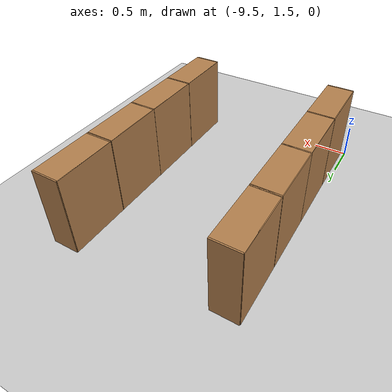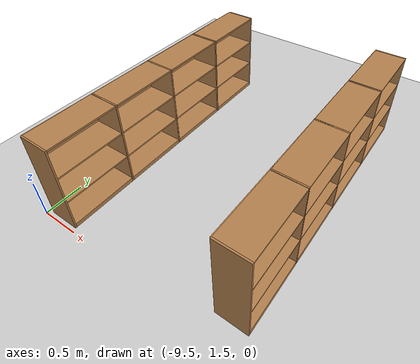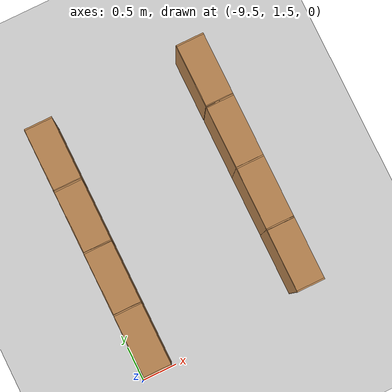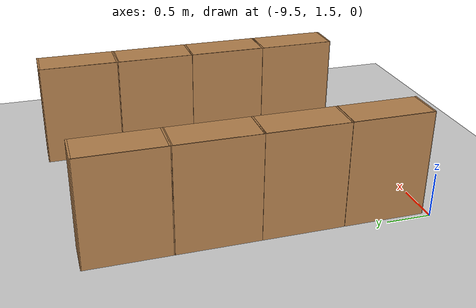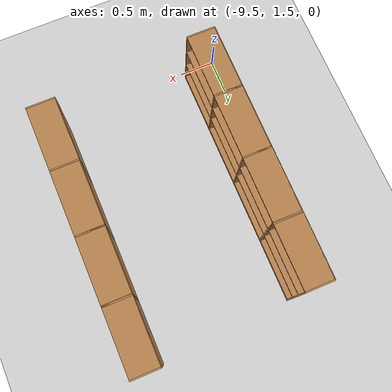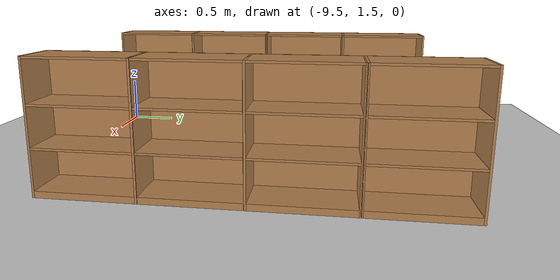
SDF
<sdf version="1.6">
 <world name="default">
  <model name="ground_plane">
   <static>1</static>
   <link name="link">
    <collision name="collision">
     <geometry><plane><normal>0 0 1</normal><size>100 100</size></plane></geometry>
     <surface><friction><ode><mu>100</mu><mu2>50</mu2></ode></friction></surface>
    </collision>
    <visual name="visual">
     <cast_shadows>0</cast_shadows>
     <geometry><plane><normal>0 0 1</normal><size>100 100</size></plane></geometry>
     <material>
      <script><uri>file://media/materials/scripts/gazebo.material</uri><name>Gazebo/Grey</name></script>
     </material>
    </visual>
   </link>
  </model>
  <model name="Bookself-4_clone_14_clone_2">
   <model name="Bookself-3">
    <model name="bookshelf_0">
     <static>1</static>
     <link name="link">
      <inertial><mass>1</mass></inertial>
      <collision name="back">
       <pose>0 0.005 0.6 0 -0 0</pose>
       <geometry><box><size>0.9 0.01 1.2</size></box></geometry>
      </collision>
      <visual name="visual1">
       <pose>0 0.005 0.6 0 -0 0</pose>
       <geometry><box><size>0.9 0.01 1.2</size></box></geometry>
       <material>
        <script><uri>file://media/materials/scripts/gazebo.material</uri><name>Gazebo/Wood</name></script>
       </material>
      </visual>
      <collision name="left_side">
       <pose>0.45 -0.195 0.6 0 -0 0</pose>
       <geometry><box><size>0.02 0.4 1.2</size></box></geometry>
      </collision>
      <visual name="visual2">
       <pose>0.45 -0.195 0.6 0 -0 0</pose>
       <geometry><box><size>0.02 0.4 1.2</size></box></geometry>
       <material>
        <script><uri>file://media/materials/scripts/gazebo.material</uri><name>Gazebo/Wood</name></script>
       </material>
      </visual>
      <collision name="right_side">
       <pose>-0.45 -0.195 0.6 0 -0 0</pose>
       <geometry><box><size>0.02 0.4 1.2</size></box></geometry>
      </collision>
      <visual name="visual3">
       <pose>-0.45 -0.195 0.6 0 -0 0</pose>
       <geometry><box><size>0.02 0.4 1.2</size></box></geometry>
       <material>
        <script><uri>file://media/materials/scripts/gazebo.material</uri><name>Gazebo/Wood</name></script>
       </material>
      </visual>
      <collision name="bottom">
       <pose>0 -0.195 0.03 0 -0 0</pose>
       <geometry><box><size>0.88 0.4 0.06</size></box></geometry>
      </collision>
      <visual name="visual4">
       <pose>0 -0.195 0.03 0 -0 0</pose>
       <geometry><box><size>0.88 0.4 0.06</size></box></geometry>
       <material>
        <script><uri>file://media/materials/scripts/gazebo.material</uri><name>Gazebo/Wood</name></script>
       </material>
      </visual>
      <collision name="top">
       <pose>0 -0.195 1.19 0 -0 0</pose>
       <geometry><box><size>0.88 0.4 0.02</size></box></geometry>
      </collision>
      <visual name="visual5">
       <pose>0 -0.195 1.19 0 -0 0</pose>
       <geometry><box><size>0.88 0.4 0.02</size></box></geometry>
       <material>
        <script><uri>file://media/materials/scripts/gazebo.material</uri><name>Gazebo/Wood</name></script>
       </material>
      </visual>
      <collision name="low_shelf">
       <pose>0 -0.195 0.43 0 -0 0</pose>
       <geometry><box><size>0.88 0.4 0.02</size></box></geometry>
      </collision>
      <visual name="visual6">
       <pose>0 -0.195 0.43 0 -0 0</pose>
       <geometry><box><size>0.88 0.4 0.02</size></box></geometry>
       <material>
        <script><uri>file://media/materials/scripts/gazebo.material</uri><name>Gazebo/Wood</name></script>
       </material>
      </visual>
      <collision name="high_shelf">
       <pose>0 -0.195 0.8 0 -0 0</pose>
       <geometry><box><size>0.88 0.4 0.02</size></box></geometry>
      </collision>
      <visual name="visual7">
       <pose>0 -0.195 0.8 0 -0 0</pose>
       <geometry><box><size>0.88 0.4 0.02</size></box></geometry>
       <material>
        <script><uri>file://media/materials/scripts/gazebo.material</uri><name>Gazebo/Wood</name></script>
       </material>
      </visual>
     </link>
     <pose>-0.903039 0 0 0 -0 0</pose>
    </model>
    <model name="bookshelf_1">
     <static>1</static>
     <link name="link">
      <inertial><mass>1</mass></inertial>
      <collision name="back">
       <pose>0 0.005 0.6 0 -0 0</pose>
       <geometry><box><size>0.9 0.01 1.2</size></box></geometry>
      </collision>
      <visual name="visual1">
       <pose>0 0.005 0.6 0 -0 0</pose>
       <geometry><box><size>0.9 0.01 1.2</size></box></geometry>
       <material>
        <script><uri>file://media/materials/scripts/gazebo.material</uri><name>Gazebo/Wood</name></script>
       </material>
      </visual>
      <collision name="left_side">
       <pose>0.45 -0.195 0.6 0 -0 0</pose>
       <geometry><box><size>0.02 0.4 1.2</size></box></geometry>
      </collision>
      <visual name="visual2">
       <pose>0.45 -0.195 0.6 0 -0 0</pose>
       <geometry><box><size>0.02 0.4 1.2</size></box></geometry>
       <material>
        <script><uri>file://media/materials/scripts/gazebo.material</uri><name>Gazebo/Wood</name></script>
       </material>
      </visual>
      <collision name="right_side">
       <pose>-0.45 -0.195 0.6 0 -0 0</pose>
       <geometry><box><size>0.02 0.4 1.2</size></box></geometry>
      </collision>
      <visual name="visual3">
       <pose>-0.45 -0.195 0.6 0 -0 0</pose>
       <geometry><box><size>0.02 0.4 1.2</size></box></geometry>
       <material>
        <script><uri>file://media/materials/scripts/gazebo.material</uri><name>Gazebo/Wood</name></script>
       </material>
      </visual>
      <collision name="bottom">
       <pose>0 -0.195 0.03 0 -0 0</pose>
       <geometry><box><size>0.88 0.4 0.06</size></box></geometry>
      </collision>
      <visual name="visual4">
       <pose>0 -0.195 0.03 0 -0 0</pose>
       <geometry><box><size>0.88 0.4 0.06</size></box></geometry>
       <material>
        <script><uri>file://media/materials/scripts/gazebo.material</uri><name>Gazebo/Wood</name></script>
       </material>
      </visual>
      <collision name="top">
       <pose>0 -0.195 1.19 0 -0 0</pose>
       <geometry><box><size>0.88 0.4 0.02</size></box></geometry>
      </collision>
      <visual name="visual5">
       <pose>0 -0.195 1.19 0 -0 0</pose>
       <geometry><box><size>0.88 0.4 0.02</size></box></geometry>
       <material>
        <script><uri>file://media/materials/scripts/gazebo.material</uri><name>Gazebo/Wood</name></script>
       </material>
      </visual>
      <collision name="low_shelf">
       <pose>0 -0.195 0.43 0 -0 0</pose>
       <geometry><box><size>0.88 0.4 0.02</size></box></geometry>
      </collision>
      <visual name="visual6">
       <pose>0 -0.195 0.43 0 -0 0</pose>
       <geometry><box><size>0.88 0.4 0.02</size></box></geometry>
       <material>
        <script><uri>file://media/materials/scripts/gazebo.material</uri><name>Gazebo/Wood</name></script>
       </material>
      </visual>
      <collision name="high_shelf">
       <pose>0 -0.195 0.8 0 -0 0</pose>
       <geometry><box><size>0.88 0.4 0.02</size></box></geometry>
      </collision>
      <visual name="visual7">
       <pose>0 -0.195 0.8 0 -0 0</pose>
       <geometry><box><size>0.88 0.4 0.02</size></box></geometry>
       <material>
        <script><uri>file://media/materials/scripts/gazebo.material</uri><name>Gazebo/Wood</name></script>
       </material>
      </visual>
     </link>
     <pose>0.000535 0 0 0 -0 0</pose>
    </model>
    <model name="bookshelf_1_clone">
     <static>1</static>
     <link name="link">
      <inertial><mass>1</mass></inertial>
      <collision name="back">
       <pose>0 0.005 0.6 0 -0 0</pose>
       <geometry><box><size>0.9 0.01 1.2</size></box></geometry>
      </collision>
      <visual name="visual1">
       <pose>0 0.005 0.6 0 -0 0</pose>
       <geometry><box><size>0.9 0.01 1.2</size></box></geometry>
       <material>
        <script><uri>file://media/materials/scripts/gazebo.material</uri><name>Gazebo/Wood</name></script>
       </material>
      </visual>
      <collision name="left_side">
       <pose>0.45 -0.195 0.6 0 -0 0</pose>
       <geometry><box><size>0.02 0.4 1.2</size></box></geometry>
      </collision>
      <visual name="visual2">
       <pose>0.45 -0.195 0.6 0 -0 0</pose>
       <geometry><box><size>0.02 0.4 1.2</size></box></geometry>
       <material>
        <script><uri>file://media/materials/scripts/gazebo.material</uri><name>Gazebo/Wood</name></script>
       </material>
      </visual>
      <collision name="right_side">
       <pose>-0.45 -0.195 0.6 0 -0 0</pose>
       <geometry><box><size>0.02 0.4 1.2</size></box></geometry>
      </collision>
      <visual name="visual3">
       <pose>-0.45 -0.195 0.6 0 -0 0</pose>
       <geometry><box><size>0.02 0.4 1.2</size></box></geometry>
       <material>
        <script><uri>file://media/materials/scripts/gazebo.material</uri><name>Gazebo/Wood</name></script>
       </material>
      </visual>
      <collision name="bottom">
       <pose>0 -0.195 0.03 0 -0 0</pose>
       <geometry><box><size>0.88 0.4 0.06</size></box></geometry>
      </collision>
      <visual name="visual4">
       <pose>0 -0.195 0.03 0 -0 0</pose>
       <geometry><box><size>0.88 0.4 0.06</size></box></geometry>
       <material>
        <script><uri>file://media/materials/scripts/gazebo.material</uri><name>Gazebo/Wood</name></script>
       </material>
      </visual>
      <collision name="top">
       <pose>0 -0.195 1.19 0 -0 0</pose>
       <geometry><box><size>0.88 0.4 0.02</size></box></geometry>
      </collision>
      <visual name="visual5">
       <pose>0 -0.195 1.19 0 -0 0</pose>
       <geometry><box><size>0.88 0.4 0.02</size></box></geometry>
       <material>
        <script><uri>file://media/materials/scripts/gazebo.material</uri><name>Gazebo/Wood</name></script>
       </material>
      </visual>
      <collision name="low_shelf">
       <pose>0 -0.195 0.43 0 -0 0</pose>
       <geometry><box><size>0.88 0.4 0.02</size></box></geometry>
      </collision>
      <visual name="visual6">
       <pose>0 -0.195 0.43 0 -0 0</pose>
       <geometry><box><size>0.88 0.4 0.02</size></box></geometry>
       <material>
        <script><uri>file://media/materials/scripts/gazebo.material</uri><name>Gazebo/Wood</name></script>
       </material>
      </visual>
      <collision name="high_shelf">
       <pose>0 -0.195 0.8 0 -0 0</pose>
       <geometry><box><size>0.88 0.4 0.02</size></box></geometry>
      </collision>
      <visual name="visual7">
       <pose>0 -0.195 0.8 0 -0 0</pose>
       <geometry><box><size>0.88 0.4 0.02</size></box></geometry>
       <material>
        <script><uri>file://media/materials/scripts/gazebo.material</uri><name>Gazebo/Wood</name></script>
       </material>
      </visual>
     </link>
     <pose>0.902502 0 0 0 -0 0</pose>
    </model>
    <static>1</static>
    <pose>-0.906894 3e-05 0 0 -0 0</pose>
   </model>
   <model name="bookshelf">
    <static>1</static>
    <link name="link">
     <inertial><mass>1</mass></inertial>
     <collision name="back">
      <pose>0 0.005 0.6 0 -0 0</pose>
      <geometry><box><size>0.9 0.01 1.2</size></box></geometry>
     </collision>
     <visual name="visual1">
      <pose>0 0.005 0.6 0 -0 0</pose>
      <geometry><box><size>0.9 0.01 1.2</size></box></geometry>
      <material>
       <script><uri>file://media/materials/scripts/gazebo.material</uri><name>Gazebo/Wood</name></script>
      </material>
     </visual>
     <collision name="left_side">
      <pose>0.45 -0.195 0.6 0 -0 0</pose>
      <geometry><box><size>0.02 0.4 1.2</size></box></geometry>
     </collision>
     <visual name="visual2">
      <pose>0.45 -0.195 0.6 0 -0 0</pose>
      <geometry><box><size>0.02 0.4 1.2</size></box></geometry>
      <material>
       <script><uri>file://media/materials/scripts/gazebo.material</uri><name>Gazebo/Wood</name></script>
      </material>
     </visual>
     <collision name="right_side">
      <pose>-0.45 -0.195 0.6 0 -0 0</pose>
      <geometry><box><size>0.02 0.4 1.2</size></box></geometry>
     </collision>
     <visual name="visual3">
      <pose>-0.45 -0.195 0.6 0 -0 0</pose>
      <geometry><box><size>0.02 0.4 1.2</size></box></geometry>
      <material>
       <script><uri>file://media/materials/scripts/gazebo.material</uri><name>Gazebo/Wood</name></script>
      </material>
     </visual>
     <collision name="bottom">
      <pose>0 -0.195 0.03 0 -0 0</pose>
      <geometry><box><size>0.88 0.4 0.06</size></box></geometry>
     </collision>
     <visual name="visual4">
      <pose>0 -0.195 0.03 0 -0 0</pose>
      <geometry><box><size>0.88 0.4 0.06</size></box></geometry>
      <material>
       <script><uri>file://media/materials/scripts/gazebo.material</uri><name>Gazebo/Wood</name></script>
      </material>
     </visual>
     <collision name="top">
      <pose>0 -0.195 1.19 0 -0 0</pose>
      <geometry><box><size>0.88 0.4 0.02</size></box></geometry>
     </collision>
     <visual name="visual5">
      <pose>0 -0.195 1.19 0 -0 0</pose>
      <geometry><box><size>0.88 0.4 0.02</size></box></geometry>
      <material>
       <script><uri>file://media/materials/scripts/gazebo.material</uri><name>Gazebo/Wood</name></script>
      </material>
     </visual>
     <collision name="low_shelf">
      <pose>0 -0.195 0.43 0 -0 0</pose>
      <geometry><box><size>0.88 0.4 0.02</size></box></geometry>
     </collision>
     <visual name="visual6">
      <pose>0 -0.195 0.43 0 -0 0</pose>
      <geometry><box><size>0.88 0.4 0.02</size></box></geometry>
      <material>
       <script><uri>file://media/materials/scripts/gazebo.material</uri><name>Gazebo/Wood</name></script>
      </material>
     </visual>
     <collision name="high_shelf">
      <pose>0 -0.195 0.8 0 -0 0</pose>
      <geometry><box><size>0.88 0.4 0.02</size></box></geometry>
     </collision>
     <visual name="visual7">
      <pose>0 -0.195 0.8 0 -0 0</pose>
      <geometry><box><size>0.88 0.4 0.02</size></box></geometry>
      <material>
       <script><uri>file://media/materials/scripts/gazebo.material</uri><name>Gazebo/Wood</name></script>
      </material>
     </visual>
    </link>
    <pose>0.906808 3e-05 0 0 -0 0</pose>
   </model>
   <static>0</static>
   <pose>-7.13601 3.95822 0 0 -0 1.5707</pose>
  </model>
  <model name="Bookself-4_clone_14_clone_3">
   <model name="Bookself-3">
    <model name="bookshelf_0">
     <static>1</static>
     <link name="link">
      <inertial><mass>1</mass></inertial>
      <collision name="back">
       <pose>0 0.005 0.6 0 -0 0</pose>
       <geometry><box><size>0.9 0.01 1.2</size></box></geometry>
      </collision>
      <visual name="visual1">
       <pose>0 0.005 0.6 0 -0 0</pose>
       <geometry><box><size>0.9 0.01 1.2</size></box></geometry>
       <material>
        <script><uri>file://media/materials/scripts/gazebo.material</uri><name>Gazebo/Wood</name></script>
       </material>
      </visual>
      <collision name="left_side">
       <pose>0.45 -0.195 0.6 0 -0 0</pose>
       <geometry><box><size>0.02 0.4 1.2</size></box></geometry>
      </collision>
      <visual name="visual2">
       <pose>0.45 -0.195 0.6 0 -0 0</pose>
       <geometry><box><size>0.02 0.4 1.2</size></box></geometry>
       <material>
        <script><uri>file://media/materials/scripts/gazebo.material</uri><name>Gazebo/Wood</name></script>
       </material>
      </visual>
      <collision name="right_side">
       <pose>-0.45 -0.195 0.6 0 -0 0</pose>
       <geometry><box><size>0.02 0.4 1.2</size></box></geometry>
      </collision>
      <visual name="visual3">
       <pose>-0.45 -0.195 0.6 0 -0 0</pose>
       <geometry><box><size>0.02 0.4 1.2</size></box></geometry>
       <material>
        <script><uri>file://media/materials/scripts/gazebo.material</uri><name>Gazebo/Wood</name></script>
       </material>
      </visual>
      <collision name="bottom">
       <pose>0 -0.195 0.03 0 -0 0</pose>
       <geometry><box><size>0.88 0.4 0.06</size></box></geometry>
      </collision>
      <visual name="visual4">
       <pose>0 -0.195 0.03 0 -0 0</pose>
       <geometry><box><size>0.88 0.4 0.06</size></box></geometry>
       <material>
        <script><uri>file://media/materials/scripts/gazebo.material</uri><name>Gazebo/Wood</name></script>
       </material>
      </visual>
      <collision name="top">
       <pose>0 -0.195 1.19 0 -0 0</pose>
       <geometry><box><size>0.88 0.4 0.02</size></box></geometry>
      </collision>
      <visual name="visual5">
       <pose>0 -0.195 1.19 0 -0 0</pose>
       <geometry><box><size>0.88 0.4 0.02</size></box></geometry>
       <material>
        <script><uri>file://media/materials/scripts/gazebo.material</uri><name>Gazebo/Wood</name></script>
       </material>
      </visual>
      <collision name="low_shelf">
       <pose>0 -0.195 0.43 0 -0 0</pose>
       <geometry><box><size>0.88 0.4 0.02</size></box></geometry>
      </collision>
      <visual name="visual6">
       <pose>0 -0.195 0.43 0 -0 0</pose>
       <geometry><box><size>0.88 0.4 0.02</size></box></geometry>
       <material>
        <script><uri>file://media/materials/scripts/gazebo.material</uri><name>Gazebo/Wood</name></script>
       </material>
      </visual>
      <collision name="high_shelf">
       <pose>0 -0.195 0.8 0 -0 0</pose>
       <geometry><box><size>0.88 0.4 0.02</size></box></geometry>
      </collision>
      <visual name="visual7">
       <pose>0 -0.195 0.8 0 -0 0</pose>
       <geometry><box><size>0.88 0.4 0.02</size></box></geometry>
       <material>
        <script><uri>file://media/materials/scripts/gazebo.material</uri><name>Gazebo/Wood</name></script>
       </material>
      </visual>
     </link>
     <pose>-0.903039 0 0 0 -0 0</pose>
    </model>
    <model name="bookshelf_1">
     <static>1</static>
     <link name="link">
      <inertial><mass>1</mass></inertial>
      <collision name="back">
       <pose>0 0.005 0.6 0 -0 0</pose>
       <geometry><box><size>0.9 0.01 1.2</size></box></geometry>
      </collision>
      <visual name="visual1">
       <pose>0 0.005 0.6 0 -0 0</pose>
       <geometry><box><size>0.9 0.01 1.2</size></box></geometry>
       <material>
        <script><uri>file://media/materials/scripts/gazebo.material</uri><name>Gazebo/Wood</name></script>
       </material>
      </visual>
      <collision name="left_side">
       <pose>0.45 -0.195 0.6 0 -0 0</pose>
       <geometry><box><size>0.02 0.4 1.2</size></box></geometry>
      </collision>
      <visual name="visual2">
       <pose>0.45 -0.195 0.6 0 -0 0</pose>
       <geometry><box><size>0.02 0.4 1.2</size></box></geometry>
       <material>
        <script><uri>file://media/materials/scripts/gazebo.material</uri><name>Gazebo/Wood</name></script>
       </material>
      </visual>
      <collision name="right_side">
       <pose>-0.45 -0.195 0.6 0 -0 0</pose>
       <geometry><box><size>0.02 0.4 1.2</size></box></geometry>
      </collision>
      <visual name="visual3">
       <pose>-0.45 -0.195 0.6 0 -0 0</pose>
       <geometry><box><size>0.02 0.4 1.2</size></box></geometry>
       <material>
        <script><uri>file://media/materials/scripts/gazebo.material</uri><name>Gazebo/Wood</name></script>
       </material>
      </visual>
      <collision name="bottom">
       <pose>0 -0.195 0.03 0 -0 0</pose>
       <geometry><box><size>0.88 0.4 0.06</size></box></geometry>
      </collision>
      <visual name="visual4">
       <pose>0 -0.195 0.03 0 -0 0</pose>
       <geometry><box><size>0.88 0.4 0.06</size></box></geometry>
       <material>
        <script><uri>file://media/materials/scripts/gazebo.material</uri><name>Gazebo/Wood</name></script>
       </material>
      </visual>
      <collision name="top">
       <pose>0 -0.195 1.19 0 -0 0</pose>
       <geometry><box><size>0.88 0.4 0.02</size></box></geometry>
      </collision>
      <visual name="visual5">
       <pose>0 -0.195 1.19 0 -0 0</pose>
       <geometry><box><size>0.88 0.4 0.02</size></box></geometry>
       <material>
        <script><uri>file://media/materials/scripts/gazebo.material</uri><name>Gazebo/Wood</name></script>
       </material>
      </visual>
      <collision name="low_shelf">
       <pose>0 -0.195 0.43 0 -0 0</pose>
       <geometry><box><size>0.88 0.4 0.02</size></box></geometry>
      </collision>
      <visual name="visual6">
       <pose>0 -0.195 0.43 0 -0 0</pose>
       <geometry><box><size>0.88 0.4 0.02</size></box></geometry>
       <material>
        <script><uri>file://media/materials/scripts/gazebo.material</uri><name>Gazebo/Wood</name></script>
       </material>
      </visual>
      <collision name="high_shelf">
       <pose>0 -0.195 0.8 0 -0 0</pose>
       <geometry><box><size>0.88 0.4 0.02</size></box></geometry>
      </collision>
      <visual name="visual7">
       <pose>0 -0.195 0.8 0 -0 0</pose>
       <geometry><box><size>0.88 0.4 0.02</size></box></geometry>
       <material>
        <script><uri>file://media/materials/scripts/gazebo.material</uri><name>Gazebo/Wood</name></script>
       </material>
      </visual>
     </link>
     <pose>0.000535 0 0 0 -0 0</pose>
    </model>
    <model name="bookshelf_1_clone">
     <static>1</static>
     <link name="link">
      <inertial><mass>1</mass></inertial>
      <collision name="back">
       <pose>0 0.005 0.6 0 -0 0</pose>
       <geometry><box><size>0.9 0.01 1.2</size></box></geometry>
      </collision>
      <visual name="visual1">
       <pose>0 0.005 0.6 0 -0 0</pose>
       <geometry><box><size>0.9 0.01 1.2</size></box></geometry>
       <material>
        <script><uri>file://media/materials/scripts/gazebo.material</uri><name>Gazebo/Wood</name></script>
       </material>
      </visual>
      <collision name="left_side">
       <pose>0.45 -0.195 0.6 0 -0 0</pose>
       <geometry><box><size>0.02 0.4 1.2</size></box></geometry>
      </collision>
      <visual name="visual2">
       <pose>0.45 -0.195 0.6 0 -0 0</pose>
       <geometry><box><size>0.02 0.4 1.2</size></box></geometry>
       <material>
        <script><uri>file://media/materials/scripts/gazebo.material</uri><name>Gazebo/Wood</name></script>
       </material>
      </visual>
      <collision name="right_side">
       <pose>-0.45 -0.195 0.6 0 -0 0</pose>
       <geometry><box><size>0.02 0.4 1.2</size></box></geometry>
      </collision>
      <visual name="visual3">
       <pose>-0.45 -0.195 0.6 0 -0 0</pose>
       <geometry><box><size>0.02 0.4 1.2</size></box></geometry>
       <material>
        <script><uri>file://media/materials/scripts/gazebo.material</uri><name>Gazebo/Wood</name></script>
       </material>
      </visual>
      <collision name="bottom">
       <pose>0 -0.195 0.03 0 -0 0</pose>
       <geometry><box><size>0.88 0.4 0.06</size></box></geometry>
      </collision>
      <visual name="visual4">
       <pose>0 -0.195 0.03 0 -0 0</pose>
       <geometry><box><size>0.88 0.4 0.06</size></box></geometry>
       <material>
        <script><uri>file://media/materials/scripts/gazebo.material</uri><name>Gazebo/Wood</name></script>
       </material>
      </visual>
      <collision name="top">
       <pose>0 -0.195 1.19 0 -0 0</pose>
       <geometry><box><size>0.88 0.4 0.02</size></box></geometry>
      </collision>
      <visual name="visual5">
       <pose>0 -0.195 1.19 0 -0 0</pose>
       <geometry><box><size>0.88 0.4 0.02</size></box></geometry>
       <material>
        <script><uri>file://media/materials/scripts/gazebo.material</uri><name>Gazebo/Wood</name></script>
       </material>
      </visual>
      <collision name="low_shelf">
       <pose>0 -0.195 0.43 0 -0 0</pose>
       <geometry><box><size>0.88 0.4 0.02</size></box></geometry>
      </collision>
      <visual name="visual6">
       <pose>0 -0.195 0.43 0 -0 0</pose>
       <geometry><box><size>0.88 0.4 0.02</size></box></geometry>
       <material>
        <script><uri>file://media/materials/scripts/gazebo.material</uri><name>Gazebo/Wood</name></script>
       </material>
      </visual>
      <collision name="high_shelf">
       <pose>0 -0.195 0.8 0 -0 0</pose>
       <geometry><box><size>0.88 0.4 0.02</size></box></geometry>
      </collision>
      <visual name="visual7">
       <pose>0 -0.195 0.8 0 -0 0</pose>
       <geometry><box><size>0.88 0.4 0.02</size></box></geometry>
       <material>
        <script><uri>file://media/materials/scripts/gazebo.material</uri><name>Gazebo/Wood</name></script>
       </material>
      </visual>
     </link>
     <pose>0.902502 0 0 0 -0 0</pose>
    </model>
    <static>1</static>
    <pose>-0.906894 3e-05 0 0 -0 0</pose>
   </model>
   <model name="bookshelf">
    <static>1</static>
    <link name="link">
     <inertial><mass>1</mass></inertial>
     <collision name="back">
      <pose>0 0.005 0.6 0 -0 0</pose>
      <geometry><box><size>0.9 0.01 1.2</size></box></geometry>
     </collision>
     <visual name="visual1">
      <pose>0 0.005 0.6 0 -0 0</pose>
      <geometry><box><size>0.9 0.01 1.2</size></box></geometry>
      <material>
       <script><uri>file://media/materials/scripts/gazebo.material</uri><name>Gazebo/Wood</name></script>
      </material>
     </visual>
     <collision name="left_side">
      <pose>0.45 -0.195 0.6 0 -0 0</pose>
      <geometry><box><size>0.02 0.4 1.2</size></box></geometry>
     </collision>
     <visual name="visual2">
      <pose>0.45 -0.195 0.6 0 -0 0</pose>
      <geometry><box><size>0.02 0.4 1.2</size></box></geometry>
      <material>
       <script><uri>file://media/materials/scripts/gazebo.material</uri><name>Gazebo/Wood</name></script>
      </material>
     </visual>
     <collision name="right_side">
      <pose>-0.45 -0.195 0.6 0 -0 0</pose>
      <geometry><box><size>0.02 0.4 1.2</size></box></geometry>
     </collision>
     <visual name="visual3">
      <pose>-0.45 -0.195 0.6 0 -0 0</pose>
      <geometry><box><size>0.02 0.4 1.2</size></box></geometry>
      <material>
       <script><uri>file://media/materials/scripts/gazebo.material</uri><name>Gazebo/Wood</name></script>
      </material>
     </visual>
     <collision name="bottom">
      <pose>0 -0.195 0.03 0 -0 0</pose>
      <geometry><box><size>0.88 0.4 0.06</size></box></geometry>
     </collision>
     <visual name="visual4">
      <pose>0 -0.195 0.03 0 -0 0</pose>
      <geometry><box><size>0.88 0.4 0.06</size></box></geometry>
      <material>
       <script><uri>file://media/materials/scripts/gazebo.material</uri><name>Gazebo/Wood</name></script>
      </material>
     </visual>
     <collision name="top">
      <pose>0 -0.195 1.19 0 -0 0</pose>
      <geometry><box><size>0.88 0.4 0.02</size></box></geometry>
     </collision>
     <visual name="visual5">
      <pose>0 -0.195 1.19 0 -0 0</pose>
      <geometry><box><size>0.88 0.4 0.02</size></box></geometry>
      <material>
       <script><uri>file://media/materials/scripts/gazebo.material</uri><name>Gazebo/Wood</name></script>
      </material>
     </visual>
     <collision name="low_shelf">
      <pose>0 -0.195 0.43 0 -0 0</pose>
      <geometry><box><size>0.88 0.4 0.02</size></box></geometry>
     </collision>
     <visual name="visual6">
      <pose>0 -0.195 0.43 0 -0 0</pose>
      <geometry><box><size>0.88 0.4 0.02</size></box></geometry>
      <material>
       <script><uri>file://media/materials/scripts/gazebo.material</uri><name>Gazebo/Wood</name></script>
      </material>
     </visual>
     <collision name="high_shelf">
      <pose>0 -0.195 0.8 0 -0 0</pose>
      <geometry><box><size>0.88 0.4 0.02</size></box></geometry>
     </collision>
     <visual name="visual7">
      <pose>0 -0.195 0.8 0 -0 0</pose>
      <geometry><box><size>0.88 0.4 0.02</size></box></geometry>
      <material>
       <script><uri>file://media/materials/scripts/gazebo.material</uri><name>Gazebo/Wood</name></script>
      </material>
     </visual>
    </link>
    <pose>0.906808 3e-05 0 0 -0 0</pose>
   </model>
   <static>0</static>
   <pose>-9.43057 3.82325 0 0 -0 1.5707</pose>
  </model>
 </world>
</sdf>
